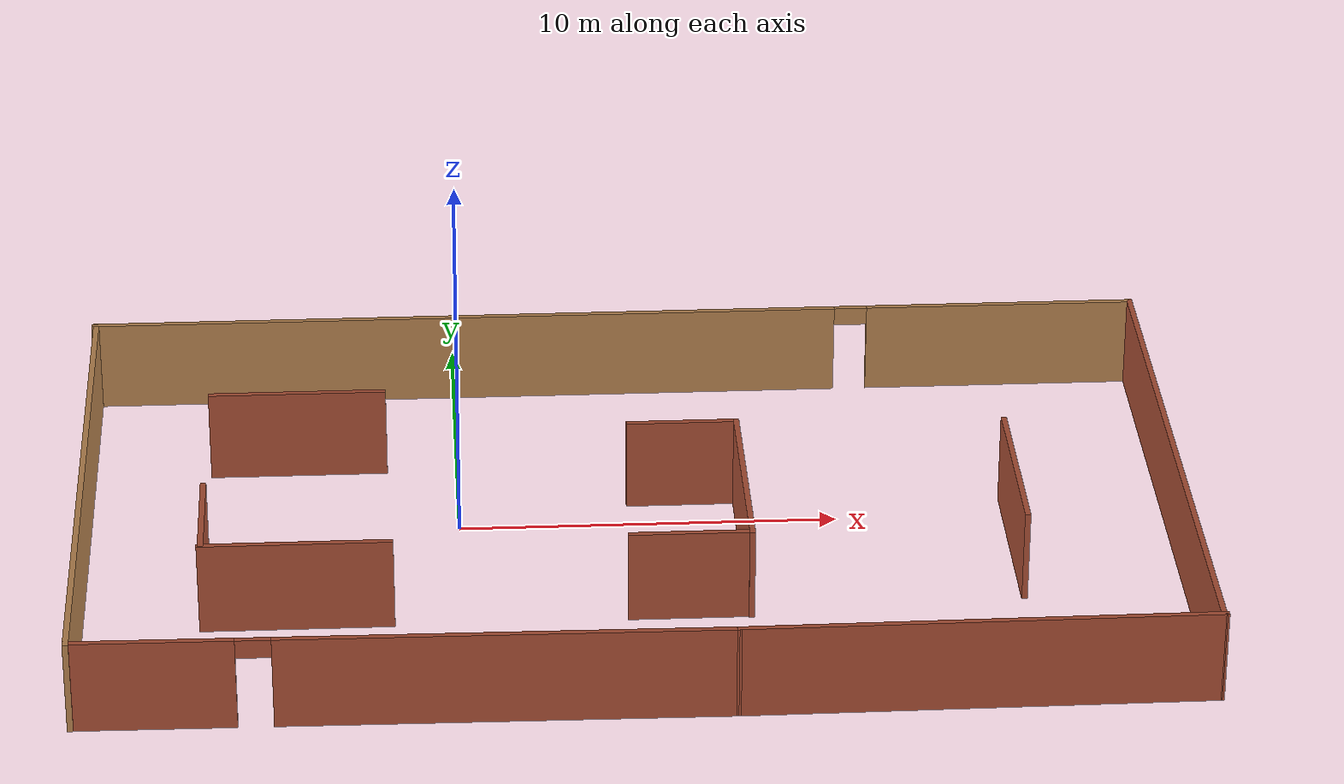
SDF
<?xml version='1.0'?>
<sdf version='1.7'>
  <model name='Gazebo_obstacle_world'>
    <pose>4.46258 -1.09285 0 0 -0 0</pose>
    <link name='Wall_1'>
      <pose>-6.04305 -8.46328 0 0 -0 -0.009242</pose>
      <visual name='Wall_1_Visual_0'>
        <pose>-6.24304 0 1.25 0 -0 0</pose>
        <geometry>
          <box>
            <size>4.21401 0.15 2.5</size>
          </box>
        </geometry>
        <material>
          <script>
            <uri>file://media/materials/scripts/gazebo.material</uri>
            <name>Gazebo/Bricks</name>
          </script>
          <ambient>0.996078 0.47451 0.0196078 1</ambient>
        </material>
        <meta>
          <layer>0</layer>
        </meta>
      </visual>
      <collision name='Wall_1_Collision_0'>
        <geometry>
          <box>
            <size>4.21401 0.15 2.5</size>
          </box>
        </geometry>
        <pose>-6.24304 0 1.25 0 -0 0</pose>
      </collision>
      <visual name='Wall_1_Visual_1'>
        <pose>2.557 0 1.25 0 -0 0</pose>
        <geometry>
          <box>
            <size>11.5861 0.15 2.5</size>
          </box>
        </geometry>
        <material>
          <script>
            <uri>file://media/materials/scripts/gazebo.material</uri>
            <name>Gazebo/Bricks</name>
          </script>
          <ambient>0.996078 0.47451 0.0196078 1</ambient>
        </material>
        <meta>
          <layer>0</layer>
        </meta>
      </visual>
      <collision name='Wall_1_Collision_1'>
        <geometry>
          <box>
            <size>11.5861 0.15 2.5</size>
          </box>
        </geometry>
        <pose>2.557 0 1.25 0 -0 0</pose>
      </collision>
      <visual name='Wall_1_Visual_2'>
        <pose>-3.68604 0 2.25 0 -0 0</pose>
        <geometry>
          <box>
            <size>0.9 0.15 0.5</size>
          </box>
        </geometry>
        <material>
          <script>
            <uri>file://media/materials/scripts/gazebo.material</uri>
            <name>Gazebo/Bricks</name>
          </script>
          <ambient>0.996078 0.47451 0.0196078 1</ambient>
        </material>
        <meta>
          <layer>0</layer>
        </meta>
      </visual>
      <collision name='Wall_1_Collision_2'>
        <geometry>
          <box>
            <size>0.9 0.15 0.5</size>
          </box>
        </geometry>
        <pose>-3.68604 0 2.25 0 -0 0</pose>
      </collision>
    </link>
    <link name='Wall_15'>
      <collision name='Wall_15_Collision'>
        <geometry>
          <box>
            <size>5.25 0.15 2.5</size>
          </box>
        </geometry>
        <pose>0 0 1.25 0 -0 0</pose>
      </collision>
      <visual name='Wall_15_Visual'>
        <pose>0 0 1.25 0 -0 0</pose>
        <geometry>
          <box>
            <size>5.25 0.15 2.5</size>
          </box>
        </geometry>
        <material>
          <script>
            <uri>file://media/materials/scripts/gazebo.material</uri>
            <name>Gazebo/Bricks</name>
          </script>
          <ambient>0.996078 0.47451 0.0196078 1</ambient>
        </material>
        <meta>
          <layer>0</layer>
        </meta>
      </visual>
      <pose>10.0448 -0.665554 0 0 -0 -1.5708</pose>
    </link>
    <link name='Wall_19'>
      <collision name='Wall_19_Collision'>
        <geometry>
          <box>
            <size>4.75 0.15 2.5</size>
          </box>
        </geometry>
        <pose>0 0 1.25 0 -0 0</pose>
      </collision>
      <visual name='Wall_19_Visual'>
        <pose>0 0 1.25 0 -0 0</pose>
        <geometry>
          <box>
            <size>4.75 0.15 2.5</size>
          </box>
        </geometry>
        <material>
          <script>
            <uri>file://media/materials/scripts/gazebo.material</uri>
            <name>Gazebo/Bricks</name>
          </script>
          <ambient>0.996078 0.47451 0.0196078 1</ambient>
        </material>
        <meta>
          <layer>0</layer>
        </meta>
      </visual>
      <pose>-8.74333 4.31461 0 0 -0 3.14159</pose>
    </link>
    <link name='Wall_2'>
      <collision name='Wall_2_Collision'>
        <geometry>
          <box>
            <size>12.233 0.15 2.5</size>
          </box>
        </geometry>
        <pose>0 0 1.25 0 -0 0</pose>
      </collision>
      <visual name='Wall_2_Visual'>
        <pose>0 0 1.25 0 -0 0</pose>
        <geometry>
          <box>
            <size>12.233 0.15 2.5</size>
          </box>
        </geometry>
        <material>
          <script>
            <uri>file://media/materials/scripts/gazebo.material</uri>
            <name>Gazebo/Bricks</name>
          </script>
          <ambient>0.996078 0.47451 0.0196078 1</ambient>
        </material>
        <meta>
          <layer>0</layer>
        </meta>
      </visual>
      <pose>8.30347 -8.48625 0 0 -0 0.008856</pose>
    </link>
    <link name='Wall_21'>
      <collision name='Wall_21_Collision'>
        <geometry>
          <box>
            <size>5 0.15 2.5</size>
          </box>
        </geometry>
        <pose>0 0 1.25 0 -0 0</pose>
      </collision>
      <visual name='Wall_21_Visual'>
        <pose>0 0 1.25 0 -0 0</pose>
        <geometry>
          <box>
            <size>5 0.15 2.5</size>
          </box>
        </geometry>
        <material>
          <script>
            <uri>file://media/materials/scripts/gazebo.material</uri>
            <name>Gazebo/Bricks</name>
          </script>
          <ambient>0.996078 0.47451 0.0196078 1</ambient>
        </material>
        <meta>
          <layer>0</layer>
        </meta>
      </visual>
      <pose>-8.7407 -3.76858 0 0 -0 0</pose>
    </link>
    <link name='Wall_25'>
      <collision name='Wall_25_Collision'>
        <geometry>
          <box>
            <size>3.3101 0.15 2.5</size>
          </box>
        </geometry>
        <pose>0 0 1.25 0 -0 0</pose>
      </collision>
      <visual name='Wall_25_Visual'>
        <pose>0 0 1.25 0 -0 0</pose>
        <geometry>
          <box>
            <size>3.3101 0.15 2.5</size>
          </box>
        </geometry>
        <material>
          <script>
            <uri>file://media/materials/scripts/gazebo.material</uri>
            <name>Gazebo/Bricks</name>
          </script>
          <ambient>1 1 1 1</ambient>
        </material>
        <meta>
          <layer>0</layer>
        </meta>
      </visual>
      <pose>-11.1351 -2.15794 0 0 -0 1.5708</pose>
    </link>
    <link name='Wall_3'>
      <collision name='Wall_3_Collision'>
        <geometry>
          <box>
            <size>17.1226 0.15 2.5</size>
          </box>
        </geometry>
        <pose>0 0 1.25 0 -0 0</pose>
      </collision>
      <visual name='Wall_3_Visual'>
        <pose>0 0 1.25 0 -0 0</pose>
        <geometry>
          <box>
            <size>17.1226 0.15 2.5</size>
          </box>
        </geometry>
        <material>
          <script>
            <uri>file://media/materials/scripts/gazebo.material</uri>
            <name>Gazebo/Bricks</name>
          </script>
          <ambient>0.996078 0.47451 0.0196078 1</ambient>
        </material>
        <meta>
          <layer>0</layer>
        </meta>
      </visual>
      <pose>14.318 0.053547 0 0 -0 1.56764</pose>
    </link>
    <link name='Wall_4'>
      <pose>-0.027081 8.54008 0 0 -0 3.14158</pose>
      <visual name='Wall_4_Visual_0'>
        <pose>-10.7122 0 1.25 0 -0 0</pose>
        <geometry>
          <box>
            <size>7.3621 0.15 2.5</size>
          </box>
        </geometry>
        <material>
          <script>
            <uri>file://media/materials/scripts/gazebo.material</uri>
            <name>Gazebo/Wood</name>
          </script>
          <ambient>0.996078 0.47451 0.0196078 1</ambient>
        </material>
        <meta>
          <layer>0</layer>
        </meta>
      </visual>
      <collision name='Wall_4_Collision_0'>
        <geometry>
          <box>
            <size>7.3621 0.15 2.5</size>
          </box>
        </geometry>
        <pose>-10.7122 0 1.25 0 -0 0</pose>
      </collision>
      <visual name='Wall_4_Visual_1'>
        <pose>4.13105 0 1.25 0 -0 0</pose>
        <geometry>
          <box>
            <size>20.5245 0.15 2.5</size>
          </box>
        </geometry>
        <material>
          <script>
            <uri>file://media/materials/scripts/gazebo.material</uri>
            <name>Gazebo/Wood</name>
          </script>
          <ambient>0.996078 0.47451 0.0196078 1</ambient>
        </material>
        <meta>
          <layer>0</layer>
        </meta>
      </visual>
      <collision name='Wall_4_Collision_1'>
        <geometry>
          <box>
            <size>20.5245 0.15 2.5</size>
          </box>
        </geometry>
        <pose>4.13105 0 1.25 0 -0 0</pose>
      </collision>
      <visual name='Wall_4_Visual_2'>
        <pose>-6.58119 0 2.25 0 -0 0</pose>
        <geometry>
          <box>
            <size>0.9 0.15 0.5</size>
          </box>
        </geometry>
        <material>
          <script>
            <uri>file://media/materials/scripts/gazebo.material</uri>
            <name>Gazebo/Wood</name>
          </script>
          <ambient>0.996078 0.47451 0.0196078 1</ambient>
        </material>
        <meta>
          <layer>0</layer>
        </meta>
      </visual>
      <collision name='Wall_4_Collision_2'>
        <geometry>
          <box>
            <size>0.9 0.15 0.5</size>
          </box>
        </geometry>
        <pose>-6.58119 0 2.25 0 -0 0</pose>
      </collision>
    </link>
    <link name='Wall_5'>
      <collision name='Wall_5_Collision'>
        <geometry>
          <box>
            <size>17.1077 0.15 2.5</size>
          </box>
        </geometry>
        <pose>0 0 1.25 0 -0 0</pose>
      </collision>
      <visual name='Wall_5_Visual'>
        <pose>0 0 1.25 0 -0 0</pose>
        <geometry>
          <box>
            <size>17.1077 0.15 2.5</size>
          </box>
        </geometry>
        <material>
          <script>
            <uri>file://media/materials/scripts/gazebo.material</uri>
            <name>Gazebo/Wood</name>
          </script>
          <ambient>0.996078 0.47451 0.0196078 1</ambient>
        </material>
        <meta>
          <layer>0</layer>
        </meta>
      </visual>
      <pose>-14.3048 0.061467 0 0 -0 -1.57232</pose>
    </link>
    <link name='Wall_7'>
      <collision name='Wall_7_Collision'>
        <geometry>
          <box>
            <size>3 0.15 2.5</size>
          </box>
        </geometry>
        <pose>0 0 1.25 0 -0 0</pose>
      </collision>
      <visual name='Wall_7_Visual'>
        <pose>0 0 1.25 0 -0 0</pose>
        <geometry>
          <box>
            <size>3 0.15 2.5</size>
          </box>
        </geometry>
        <material>
          <script>
            <uri>file://media/materials/scripts/gazebo.material</uri>
            <name>Gazebo/Bricks</name>
          </script>
          <ambient>0.996078 0.47451 0.0196078 1</ambient>
        </material>
        <meta>
          <layer>0</layer>
        </meta>
      </visual>
      <pose>1.49846 2.16683 0 0 -0 0</pose>
    </link>
    <link name='Wall_8'>
      <collision name='Wall_8_Collision'>
        <geometry>
          <box>
            <size>6.09069 0.15 2.5</size>
          </box>
        </geometry>
        <pose>0 0 1.25 0 -0 0</pose>
      </collision>
      <visual name='Wall_8_Visual'>
        <pose>0 0 1.25 0 -0 0</pose>
        <geometry>
          <box>
            <size>6.09069 0.15 2.5</size>
          </box>
        </geometry>
        <material>
          <script>
            <uri>file://media/materials/scripts/gazebo.material</uri>
            <name>Gazebo/Bricks</name>
          </script>
          <ambient>1 1 1 1</ambient>
        </material>
        <meta>
          <layer>0</layer>
        </meta>
      </visual>
      <pose>2.92346 -0.803517 0 0 -0 -1.5708</pose>
    </link>
    <link name='Wall_9'>
      <collision name='Wall_9_Collision'>
        <geometry>
          <box>
            <size>3.25 0.15 2.5</size>
          </box>
        </geometry>
        <pose>0 0 1.25 0 -0 0</pose>
      </collision>
      <visual name='Wall_9_Visual'>
        <pose>0 0 1.25 0 -0 0</pose>
        <geometry>
          <box>
            <size>3.25 0.15 2.5</size>
          </box>
        </geometry>
        <material>
          <script>
            <uri>file://media/materials/scripts/gazebo.material</uri>
            <name>Gazebo/Bricks</name>
          </script>
          <ambient>1 1 1 1</ambient>
        </material>
        <meta>
          <layer>0</layer>
        </meta>
      </visual>
      <pose>1.37346 -3.74327 0 0 -0 3.14159</pose>
    </link>
    <static>1</static>
  </model>
</sdf>
